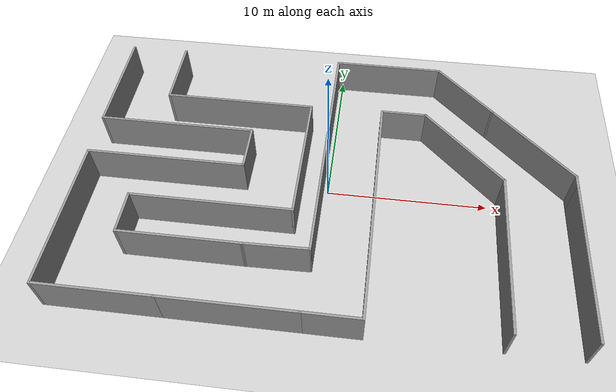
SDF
<sdf version="1.7">
 <world name="default">
  <light name="sun" type="directional">
   <pose>0 0 10 0 -0 0</pose>
   <diffuse>0.8 0.8 0.8 1</diffuse>
   <specular>0.2 0.2 0.2 1</specular>
   <attenuation>
    <range>1000</range>
    <constant>0.9</constant>
    <linear>0.01</linear>
    <quadratic>0.001</quadratic>
   </attenuation>
   <direction>-0.5 0.1 -0.9</direction>
   <spot><inner_angle>0</inner_angle><outer_angle>0</outer_angle><falloff>0</falloff></spot>
  </light>
  <model name="ground_plane">
   <static>1</static>
   <link name="link">
    <collision name="collision">
     <geometry><plane><normal>0 0 1</normal><size>100 100</size></plane></geometry>
     <surface>
      <contact><collide_bitmask>65535</collide_bitmask></contact>
      <friction><ode><mu>100</mu><mu2>50</mu2></ode></friction>
     </surface>
    </collision>
    <visual name="visual">
     <cast_shadows>0</cast_shadows>
     <geometry><plane><normal>0 0 1</normal><size>100 100</size></plane></geometry>
     <material>
      <script><uri>file://media/materials/scripts/gazebo.material</uri><name>Gazebo/Grey</name></script>
     </material>
    </visual>
   </link>
  </model>
  <gravity>0 0 -9.8</gravity>
  <magnetic_field>6e-06 2.3e-05 -4.2e-05</magnetic_field>
  <atmosphere type="adiabatic"/>
  <physics type="ode">
   <max_step_size>0.001</max_step_size>
   <real_time_factor>1</real_time_factor>
   <real_time_update_rate>1000</real_time_update_rate>
  </physics>
  <scene><ambient>0.4 0.4 0.4 1</ambient><background>0.7 0.7 0.7 1</background><shadows>1</shadows></scene>
  <spherical_coordinates>
   <surface_model>EARTH_WGS84</surface_model>
   <latitude_deg>0</latitude_deg>
   <longitude_deg>0</longitude_deg>
   <elevation>0</elevation>
   <heading_deg>0</heading_deg>
  </spherical_coordinates>
  <model name="bitirme_oda_v6">
   <link name="Wall_101">
    <collision name="Wall_101_Collision">
     <geometry><box><size>7.1 0.15 2.5</size></box></geometry>
     <pose>0 0 1.25 0 -0 0</pose>
    </collision>
    <visual name="Wall_101_Visual">
     <pose>0 0 1.25 0 -0 0</pose>
     <geometry><box><size>7.1 0.15 2.5</size></box></geometry>
     <material>
      <script><uri>file://media/materials/scripts/gazebo.material</uri><name>Gazebo/Grey</name></script>
      <ambient>1 1 1 1</ambient>
     </material>
     <meta><layer>0</layer></meta>
    </visual>
    <pose>3.13316 9.59812 0 0 -0 0</pose>
   </link>
   <link name="Wall_23">
    <collision name="Wall_23_Collision">
     <geometry><box><size>10 0.15 2.5</size></box></geometry>
     <pose>0 0 1.25 0 -0 0</pose>
    </collision>
    <visual name="Wall_23_Visual">
     <pose>0 0 1.25 0 -0 0</pose>
     <geometry><box><size>10 0.15 2.5</size></box></geometry>
     <material>
      <script><uri>file://media/materials/scripts/gazebo.material</uri><name>Gazebo/Grey</name></script>
      <ambient>1 1 1 1</ambient>
     </material>
     <meta><layer>0</layer></meta>
    </visual>
    <pose>15.0376 -4.56335 0 0 -0 1.5708</pose>
   </link>
   <link name="Wall_25">
    <collision name="Wall_25_Collision">
     <geometry><box><size>10.0402 0.15 2.5</size></box></geometry>
     <pose>0 0 1.25 0 -0 0</pose>
    </collision>
    <visual name="Wall_25_Visual">
     <pose>0 0 1.25 0 -0 0</pose>
     <geometry><box><size>10.0402 0.15 2.5</size></box></geometry>
     <material>
      <script><uri>file://media/materials/scripts/gazebo.material</uri><name>Gazebo/Grey</name></script>
      <ambient>1 1 1 1</ambient>
     </material>
     <meta><layer>0</layer></meta>
    </visual>
    <pose>10.6876 -4.54324 0 0 -0 1.5708</pose>
   </link>
   <link name="Wall_35">
    <collision name="Wall_35_Collision">
     <geometry><box><size>7 0.15 2.5</size></box></geometry>
     <pose>0 0 1.25 0 -0 0</pose>
    </collision>
    <visual name="Wall_35_Visual">
     <pose>0 0 1.25 0 -0 0</pose>
     <geometry><box><size>7 0.15 2.5</size></box></geometry>
     <material>
      <script><uri>file://media/materials/scripts/gazebo.material</uri><name>Gazebo/Grey</name></script>
      <ambient>1 1 1 1</ambient>
     </material>
     <meta><layer>0</layer></meta>
    </visual>
    <pose>8.25947 2.83004 0 0 -0 -0.785398</pose>
   </link>
   <link name="Wall_41">
    <collision name="Wall_41_Collision">
     <geometry><box><size>1 0.15 2.5</size></box></geometry>
     <pose>0 0 1.25 0 -0 0</pose>
    </collision>
    <visual name="Wall_41_Visual">
     <pose>0 0 1.25 0 -0 0</pose>
     <geometry><box><size>1 0.15 2.5</size></box></geometry>
     <material>
      <script><uri>file://media/materials/scripts/gazebo.material</uri><name>Gazebo/Grey</name></script>
      <ambient>1 1 1 1</ambient>
     </material>
     <meta><layer>0</layer></meta>
    </visual>
    <pose>15.0376 0.78665 0 0 -0 1.5708</pose>
   </link>
   <link name="Wall_44">
    <collision name="Wall_44_Collision">
     <geometry><box><size>7 0.15 2.5</size></box></geometry>
     <pose>0 0 1.25 0 -0 0</pose>
    </collision>
    <visual name="Wall_44_Visual">
     <pose>0 0 1.25 0 -0 0</pose>
     <geometry><box><size>7 0.15 2.5</size></box></geometry>
     <material>
      <script><uri>file://media/materials/scripts/gazebo.material</uri><name>Gazebo/Grey</name></script>
      <ambient>1 1 1 1</ambient>
     </material>
     <meta><layer>0</layer></meta>
    </visual>
    <pose>12.6093 3.63964 0 0 -0 -0.785324</pose>
   </link>
   <link name="Wall_51">
    <collision name="Wall_51_Collision">
     <geometry><box><size>5.1 0.15 2.5</size></box></geometry>
     <pose>0 0 1.25 0 -0 0</pose>
    </collision>
    <visual name="Wall_51_Visual">
     <pose>0 0 1.25 0 -0 0</pose>
     <geometry><box><size>5.1 0.15 2.5</size></box></geometry>
     <material>
      <script><uri>file://media/materials/scripts/gazebo.material</uri><name>Gazebo/Grey</name></script>
      <ambient>1 1 1 1</ambient>
     </material>
     <meta><layer>0</layer></meta>
    </visual>
    <pose>8.43742 7.81165 0 0 -0 2.35605</pose>
   </link>
   <link name="Wall_54">
    <collision name="Wall_54_Collision">
     <geometry><box><size>3 0.15 2.5</size></box></geometry>
     <pose>0 0 1.25 0 -0 0</pose>
    </collision>
    <visual name="Wall_54_Visual">
     <pose>0 0 1.25 0 -0 0</pose>
     <geometry><box><size>3 0.15 2.5</size></box></geometry>
     <material>
      <script><uri>file://media/materials/scripts/gazebo.material</uri><name>Gazebo/Grey</name></script>
      <ambient>1 1 1 1</ambient>
     </material>
     <meta><layer>0</layer></meta>
    </visual>
    <pose>4.41263 5.25188 0 0 -0 3.14159</pose>
   </link>
   <link name="Wall_56">
    <collision name="Wall_56_Collision">
     <geometry><box><size>15 0.15 2.5</size></box></geometry>
     <pose>0 0 1.25 0 -0 0</pose>
    </collision>
    <visual name="Wall_56_Visual">
     <pose>0 0 1.25 0 -0 0</pose>
     <geometry><box><size>15 0.15 2.5</size></box></geometry>
     <material>
      <script><uri>file://media/materials/scripts/gazebo.material</uri><name>Gazebo/Grey</name></script>
      <ambient>1 1 1 1</ambient>
     </material>
     <meta><layer>0</layer></meta>
    </visual>
    <pose>2.98763 -2.17312 0 0 -0 -1.5708</pose>
   </link>
   <link name="Wall_61">
    <collision name="Wall_61_Collision">
     <geometry><box><size>15.5 0.15 2.5</size></box></geometry>
     <pose>0 0 1.25 0 -0 0</pose>
    </collision>
    <visual name="Wall_61_Visual">
     <pose>0 0 1.25 0 -0 0</pose>
     <geometry><box><size>15.5 0.15 2.5</size></box></geometry>
     <material>
      <script><uri>file://media/materials/scripts/gazebo.material</uri><name>Gazebo/Grey</name></script>
      <ambient>1 1 1 1</ambient>
     </material>
     <meta><layer>0</layer></meta>
    </visual>
    <pose>-0.341837 1.92312 0 0 -0 -1.5708</pose>
   </link>
   <link name="Wall_66">
    <collision name="Wall_66_Collision">
     <geometry><box><size>3.5 0.15 2.5</size></box></geometry>
     <pose>0 0 1.25 0 -0 0</pose>
    </collision>
    <visual name="Wall_66_Visual">
     <pose>0 0 1.25 0 -0 0</pose>
     <geometry><box><size>3.5 0.15 2.5</size></box></geometry>
     <material>
      <script><uri>file://media/materials/scripts/gazebo.material</uri><name>Gazebo/Grey</name></script>
      <ambient>1 1 1 1</ambient>
     </material>
     <meta><layer>0</layer></meta>
    </visual>
    <pose>1.31263 -9.59812 0 0 -0 3.14159</pose>
   </link>
   <link name="Wall_69">
    <collision name="Wall_69_Collision">
     <geometry><box><size>4 0.15 2.5</size></box></geometry>
     <pose>0 0 1.25 0 -0 0</pose>
    </collision>
    <visual name="Wall_69_Visual">
     <pose>0 0 1.25 0 -0 0</pose>
     <geometry><box><size>4 0.15 2.5</size></box></geometry>
     <material>
      <script><uri>file://media/materials/scripts/gazebo.material</uri><name>Gazebo/Grey</name></script>
      <ambient>1 1 1 1</ambient>
     </material>
     <meta><layer>0</layer></meta>
    </visual>
    <pose>-2.26684 -5.78789 0 0 -0 -3.12289</pose>
   </link>
   <link name="Wall_73">
    <collision name="Wall_73_Collision">
     <geometry><box><size>8 0.15 2.5</size></box></geometry>
     <pose>0 0 1.25 0 -0 0</pose>
    </collision>
    <visual name="Wall_73_Visual">
     <pose>0 0 1.25 0 -0 0</pose>
     <geometry><box><size>8 0.15 2.5</size></box></geometry>
     <material>
      <script><uri>file://media/materials/scripts/gazebo.material</uri><name>Gazebo/Grey</name></script>
      <ambient>1 1 1 1</ambient>
     </material>
     <meta><layer>0</layer></meta>
    </visual>
    <pose>-4.28737 -9.59812 0 0 -0 3.14159</pose>
   </link>
   <link name="Wall_83">
    <collision name="Wall_83_Collision">
     <geometry><box><size>7 0.15 2.5</size></box></geometry>
     <pose>0 0 1.25 0 -0 0</pose>
    </collision>
    <visual name="Wall_83_Visual">
     <pose>0 0 1.25 0 -0 0</pose>
     <geometry><box><size>7 0.15 2.5</size></box></geometry>
     <material>
      <script><uri>file://media/materials/scripts/gazebo.material</uri><name>Gazebo/Grey</name></script>
      <ambient>1 1 1 1</ambient>
     </material>
     <meta><layer>0</layer></meta>
    </visual>
    <pose>-11.6374 -9.59812 0 0 -0 3.14159</pose>
   </link>
   <link name="Wall_84">
    <collision name="Wall_84_Collision">
     <geometry><box><size>9.5 0.15 2.5</size></box></geometry>
     <pose>0 0 1.25 0 -0 0</pose>
    </collision>
    <visual name="Wall_84_Visual">
     <pose>0 0 1.25 0 -0 0</pose>
     <geometry><box><size>9.5 0.15 2.5</size></box></geometry>
     <material>
      <script><uri>file://media/materials/scripts/gazebo.material</uri><name>Gazebo/Grey</name></script>
      <ambient>1 1 1 1</ambient>
     </material>
     <meta><layer>0</layer></meta>
    </visual>
    <pose>-15.0624 -4.92312 0 0 -0 1.5708</pose>
   </link>
   <link name="Wall_85">
    <collision name="Wall_85_Collision">
     <geometry><box><size>10 0.15 2.5</size></box></geometry>
     <pose>0 0 1.25 0 -0 0</pose>
    </collision>
    <visual name="Wall_85_Visual">
     <pose>0 0 1.25 0 -0 0</pose>
     <geometry><box><size>10 0.15 2.5</size></box></geometry>
     <material>
      <script><uri>file://media/materials/scripts/gazebo.material</uri><name>Gazebo/Grey</name></script>
      <ambient>1 1 1 1</ambient>
     </material>
     <meta><layer>0</layer></meta>
    </visual>
    <pose>-10.1374 -0.248123 0 0 -0 0</pose>
   </link>
   <link name="Wall_86">
    <collision name="Wall_86_Collision">
     <geometry><box><size>3 0.15 2.5</size></box></geometry>
     <pose>0 0 1.25 0 -0 0</pose>
    </collision>
    <visual name="Wall_86_Visual">
     <pose>0 0 1.25 0 -0 0</pose>
     <geometry><box><size>3 0.15 2.5</size></box></geometry>
     <material>
      <script><uri>file://media/materials/scripts/gazebo.material</uri><name>Gazebo/Grey</name></script>
      <ambient>1 1 1 1</ambient>
     </material>
     <meta><layer>0</layer></meta>
    </visual>
    <pose>-5.21237 1.17688 0 0 -0 1.5708</pose>
   </link>
   <link name="Wall_87">
    <collision name="Wall_87_Collision">
     <geometry><box><size>10 0.15 2.5</size></box></geometry>
     <pose>0 0 1.25 0 -0 0</pose>
    </collision>
    <visual name="Wall_87_Visual">
     <pose>0 0 1.25 0 -0 0</pose>
     <geometry><box><size>10 0.15 2.5</size></box></geometry>
     <material>
      <script><uri>file://media/materials/scripts/gazebo.material</uri><name>Gazebo/Grey</name></script>
      <ambient>1 1 1 1</ambient>
     </material>
     <meta><layer>0</layer></meta>
    </visual>
    <pose>-10.1374 2.60188 0 0 -0 3.14159</pose>
   </link>
   <link name="Wall_88">
    <collision name="Wall_88_Collision">
     <geometry><box><size>7.05 0.15 2.5</size></box></geometry>
     <pose>0 0 1.25 0 -0 0</pose>
    </collision>
    <visual name="Wall_88_Visual">
     <pose>0 0 1.25 0 -0 0</pose>
     <geometry><box><size>7.05 0.15 2.5</size></box></geometry>
     <material>
      <script><uri>file://media/materials/scripts/gazebo.material</uri><name>Gazebo/Grey</name></script>
      <ambient>1 1 1 1</ambient>
     </material>
     <meta><layer>0</layer></meta>
    </visual>
    <pose>-15.0624 6.05188 0 0 -0 1.5708</pose>
   </link>
   <link name="Wall_90">
    <collision name="Wall_90_Collision">
     <geometry><box><size>7.5 0.15 2.5</size></box></geometry>
     <pose>0 0 1.25 0 -0 0</pose>
    </collision>
    <visual name="Wall_90_Visual">
     <pose>0 0 1.25 0 -0 0</pose>
     <geometry><box><size>7.5 0.15 2.5</size></box></geometry>
     <material>
      <script><uri>file://media/materials/scripts/gazebo.material</uri><name>Gazebo/Grey</name></script>
      <ambient>1 1 1 1</ambient>
     </material>
     <meta><layer>0</layer></meta>
    </visual>
    <pose>-7.86684 -5.8239 0 0 -0 3.14159</pose>
   </link>
   <link name="Wall_91">
    <collision name="Wall_91_Collision">
     <geometry><box><size>2.75 0.15 2.5</size></box></geometry>
     <pose>0 0 1.25 0 -0 0</pose>
    </collision>
    <visual name="Wall_91_Visual">
     <pose>0 0 1.25 0 -0 0</pose>
     <geometry><box><size>2.75 0.15 2.5</size></box></geometry>
     <material>
      <script><uri>file://media/materials/scripts/gazebo.material</uri><name>Gazebo/Grey</name></script>
      <ambient>1 1 1 1</ambient>
     </material>
     <meta><layer>0</layer></meta>
    </visual>
    <pose>-11.5418 -4.5239 0 0 -0 1.5708</pose>
   </link>
   <link name="Wall_92">
    <collision name="Wall_92_Collision">
     <geometry><box><size>10 0.15 2.5</size></box></geometry>
     <pose>0 0 1.25 0 -0 0</pose>
    </collision>
    <visual name="Wall_92_Visual">
     <pose>0 0 1.25 0 -0 0</pose>
     <geometry><box><size>10 0.15 2.5</size></box></geometry>
     <material>
      <script><uri>file://media/materials/scripts/gazebo.material</uri><name>Gazebo/Grey</name></script>
      <ambient>1 1 1 1</ambient>
     </material>
     <meta><layer>0</layer></meta>
    </visual>
    <pose>-6.61684 -3.2239 0 0 -0 0</pose>
   </link>
   <link name="Wall_93">
    <collision name="Wall_93_Collision">
     <geometry><box><size>8.5 0.15 2.5</size></box></geometry>
     <pose>0 0 1.25 0 -0 0</pose>
    </collision>
    <visual name="Wall_93_Visual">
     <pose>0 0 1.25 0 -0 0</pose>
     <geometry><box><size>8.5 0.15 2.5</size></box></geometry>
     <material>
      <script><uri>file://media/materials/scripts/gazebo.material</uri><name>Gazebo/Grey</name></script>
      <ambient>1 1 1 1</ambient>
     </material>
     <meta><layer>0</layer></meta>
    </visual>
    <pose>-1.69184 0.951098 0 0 -0 1.5708</pose>
   </link>
   <link name="Wall_94">
    <collision name="Wall_94_Collision">
     <geometry><box><size>9.75 0.15 2.5</size></box></geometry>
     <pose>0 0 1.25 0 -0 0</pose>
    </collision>
    <visual name="Wall_94_Visual">
     <pose>0 0 1.25 0 -0 0</pose>
     <geometry><box><size>9.75 0.15 2.5</size></box></geometry>
     <material>
      <script><uri>file://media/materials/scripts/gazebo.material</uri><name>Gazebo/Grey</name></script>
      <ambient>1 1 1 1</ambient>
     </material>
     <meta><layer>0</layer></meta>
    </visual>
    <pose>-6.49184 5.1261 0 0 -0 3.14159</pose>
   </link>
   <link name="Wall_95">
    <collision name="Wall_95_Collision">
     <geometry><box><size>4.55 0.15 2.5</size></box></geometry>
     <pose>0 0 1.25 0 -0 0</pose>
    </collision>
    <visual name="Wall_95_Visual">
     <pose>0 0 1.25 0 -0 0</pose>
     <geometry><box><size>4.55 0.15 2.5</size></box></geometry>
     <material>
      <script><uri>file://media/materials/scripts/gazebo.material</uri><name>Gazebo/Grey</name></script>
      <ambient>1 1 1 1</ambient>
     </material>
     <meta><layer>0</layer></meta>
    </visual>
    <pose>-11.2918 7.3261 0 0 -0 1.5708</pose>
   </link>
   <static>1</static>
  </model>
 </world>
</sdf>
